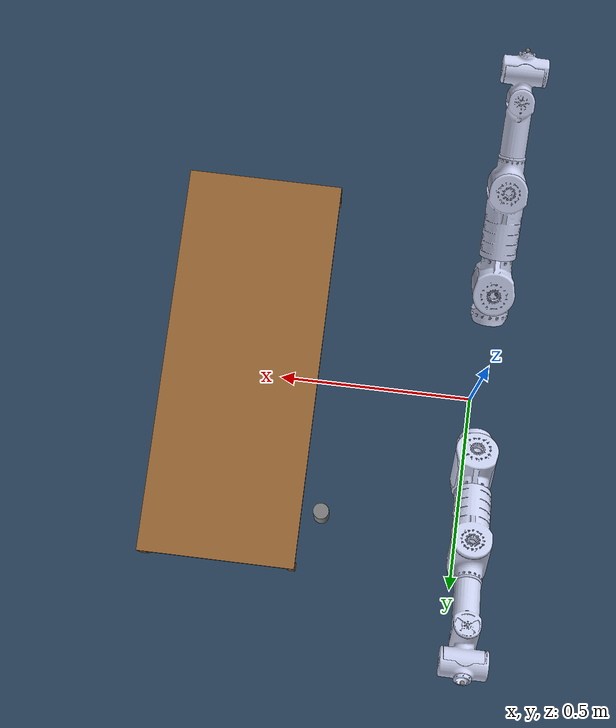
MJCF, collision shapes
<mujoco model="dual arm scene">

  <option timestep="0.001"/>
  <include file="dual_arm.xml"/>

  <statistic center="0.2 0 0.2" extent="1.0"/>

  <visual>
    <headlight diffuse="0.6 0.6 0.6" ambient="0.3 0.3 0.3" specular="0 0 0"/>
    <rgba haze="0.15 0.25 0.35 1"/>
    <global azimuth="-120" elevation="-20"/>
  </visual>

  <asset>
    <texture type="skybox" builtin="gradient" rgb1="0.3 0.5 0.7" rgb2="0 0 0" width="512" height="3072"/>
    <texture type="2d" name="groundplane" builtin="checker" mark="edge" rgb1="0.2 0.3 0.4" rgb2="0.1 0.2 0.3"
      markrgb="0.8 0.8 0.8" width="300" height="300"/>
    <material name="groundplane" texture="groundplane" texuniform="true" texrepeat="5 5" reflectance="0.2"/>
  </asset>

  <worldbody>
    <light pos="0 0 1.5" dir="0 0 -1" directional="true"/>
    <geom name="floor" size="0 0 0.05" type="plane" material="groundplane"/>
    <geom name="cylinder" type="cylinder" size="0.02 0.08" pos="0.35 0.35 0.08" contype="0" conaffinity="0"/>
    <body name="table" pos="0.6 0 0.1">
      <geom name="table_top" type="box" size="0.2 0.5 0.01" pos="0 0 0.01" rgba="0.6 0.4 0.2 1"/>
      <geom name="table_leg1" type="box" size="0.01 0.01 0.05" pos="-0.19 -0.49 -0.05" rgba="0.6 0.4 0.2 1"/>
      <geom name="table_leg2" type="box" size="0.01 0.01 0.05" pos="0.19 -0.49 -0.05" rgba="0.6 0.4 0.2 1"/>
      <geom name="table_leg3" type="box" size="0.01 0.01 0.05" pos="-0.19 0.49 -0.05" rgba="0.6 0.4 0.2 1"/>
      <geom name="table_leg4" type="box" size="0.01 0.01 0.05" pos="0.19 0.49 -0.05" rgba="0.6 0.4 0.2 1"/>
    </body>
  </worldbody>
</mujoco>

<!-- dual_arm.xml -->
<mujoco model="DUALARM.SLDASM">
  <compiler angle="radian" meshdir="meshes/"/>
  <option integrator="implicitfast"/>
  <asset>
    <mesh name="base_link" file="base_link.STL"/>
    <mesh name="L1" file="L1.STL"/>
    <mesh name="L2" file="L2.STL"/>
    <mesh name="L3" file="L3.STL"/>
    <mesh name="L4" file="L4.STL"/>
    <mesh name="L5" file="L5.STL"/>
    <mesh name="L6" file="L6.STL"/>
    <mesh name="L7" file="L7.STL"/>
    <mesh name="L8" file="L8.STL"/>
    <mesh name="L9" file="L9.STL"/>
    <mesh name="L10" file="L10.STL"/>
    <mesh name="L11" file="L11.STL"/>
    <mesh name="L12" file="L12.STL"/>
    <mesh name="L13" file="L13.STL"/>
    <mesh name="L14" file="L14.STL"/>
  </asset>

  <default>
    <default class="RAW">
      <joint range="-3.14 3.14"/>
      <general ctrlrange="-3.14 3.14" gaintype="fixed" biastype="affine" gainprm="2000" biasprm="0 -2000 -200"/>
    </default>
    <default class="PITCH_big">
      <joint range="-1.4835299 1.4835299"/>
      <general ctrlrange="-1.4835299 1.4835299" gaintype="fixed" biastype="affine" gainprm="2000" biasprm="0 -2000 -200"/>
    </default>
    <default class="PITCH">
      <joint range="-1.3089969 1.3089969"/>
      <general ctrlrange="-1.3089969 1.3089969" gaintype="fixed" biastype="affine" gainprm="2000" biasprm="0 -2000 -200"/>
    </default>
  </default>

  <worldbody>
    <geom type="mesh" contype="0" conaffinity="0" group="1" density="0" rgba="0.792157 0.819608 0.933333 1" mesh="base_link"/>
    <body name="L1" pos="0 0.14331 0.33244" quat="0.8660254 -0.50000 0 0">
      <inertial pos="-2.54816e-07 0.000220683 0.0591882" quat="0.704538 0.0600183 -0.0598814 0.704584" mass="0.256101" diaginertia="0.000520388 0.000503496 0.000461003"/>
      <joint name="J1" pos="0 0 0" axis="0 0 1" class="RAW"/>
      <geom type="mesh" contype="0" conaffinity="0" group="1" density="0" rgba="0.792157 0.819608 0.933333 1" mesh="L1"/>
      <geom type="mesh" rgba="0.792157 0.819608 0.933333 1" mesh="L1"/>
      <body name="L2" pos="0 0 0.085" quat="0.707105 -0.707108 0 0">
        <inertial pos="-6.15475e-05 -0.0254038 -0.00770433" quat="0.998651 0.0518821 -0.00028413 -0.00212822" mass="0.203365" diaginertia="0.000711807 0.000636282 0.000347615"/>
        <joint name="J2" pos="0 0 0" axis="0 0 1" class="PITCH_big"/>
        <geom type="mesh" contype="0" conaffinity="0" group="1" density="0" rgba="0.792157 0.819608 0.933333 1" mesh="L2"/>
        <geom type="mesh" rgba="0.792157 0.819608 0.933333 1" mesh="L2"/>
        <body name="L3" pos="0 -0.0665 0" quat="0.707105 0.707108 0 0">
          <inertial pos="3.43687e-05 -0.00171785 0.090774" quat="0.998451 0.0556063 0.000275665 -0.00163807" mass="0.594887" diaginertia="0.00136272 0.00116006 0.000824936"/>
          <joint name="J3" pos="0 0 0" axis="0 0 1" class="RAW"/>
          <geom type="mesh" contype="0" conaffinity="0" group="1" density="0" rgba="0.792157 0.819608 0.933333 1" mesh="L3"/>
          <geom type="mesh" rgba="0.792157 0.819608 0.933333 1" mesh="L3"/>
          <body name="L4" pos="0 0 0.1835" quat="0.499998 0.5 -0.5 0.500002">
            <inertial pos="0.012252 5.60753e-06 0.00299782" quat="-0.000191729 0.686583 -9.14932e-05 0.727051" mass="0.162422" diaginertia="0.000322962 0.000311279 0.000245846"/>
            <joint name="J4" pos="0 0 0" axis="0 0 -1" class="PITCH"/>
            <geom type="mesh" contype="0" conaffinity="0" group="1" density="0" rgba="0.792157 0.819608 0.933333 1" mesh="L4"/>
            <geom type="mesh" rgba="0.792157 0.819608 0.933333 1" mesh="L4"/>
            <body name="L5" pos="0.0605 0 0" quat="0.499998 0.5 0.500002 0.5">
              <inertial pos="1.81608e-06 -0.00153728 0.0816001" quat="0.997061 0.0766126 -6.46332e-05 3.30323e-05" mass="0.144842" diaginertia="0.000301099 0.000237452 0.000161152"/>
              <joint name="J5" pos="0 0 0" axis="0 0 1" class="RAW"/>
              <geom type="mesh" contype="0" conaffinity="0" group="1" density="0" rgba="0.792157 0.819608 0.933333 1" mesh="L5"/>
              <geom type="mesh" rgba="0.792157 0.819608 0.933333 1" mesh="L5"/>
              <body name="L6" pos="0 0 0.1495" quat="0.707105 -0.707108 0 0">
                <inertial pos="-0.00340681 -0.030349 -0.00101337" quat="0.520426 0.367659 -0.533336 0.55636" mass="0.0922109" diaginertia="0.000167493 0.000165763 0.000100994"/>
                <joint name="J6" pos="0 0 0" axis="0 0 -1" class="PITCH"/>
                <geom type="mesh" contype="0" conaffinity="0" group="1" density="0" rgba="0.792157 0.819608 0.933333 1" mesh="L6"/>
                <geom type="mesh" rgba="0.792157 0.819608 0.933333 1" mesh="L6"/>
                <body name="L7" pos="0 -0.062 0" quat="0.499998 -0.5 0.500002 -0.5">
                  <inertial pos="0.0153453 9.27391e-06 1.34171e-05" quat="0.71 0.013705 0.0138066 0.703933" mass="0.059033" diaginertia="9.54069e-05 9.25805e-05 3.54181e-05"/>
                  <joint name="J7" pos="0 0 0" axis="0 0 1" class="RAW"/>
                  <geom type="mesh" contype="0" conaffinity="0" group="1" density="0" rgba="0.792157 0.819608 0.933333 1" mesh="L7"/>
                  <geom type="mesh" rgba="0.792157 0.819608 0.933333 1" mesh="L7"/>
                  <site name="end_effector_right" pos="0.05 0.0 0" quat="0.7071068 0 0.7071068 0"/>
                </body>
              </body>
            </body>
          </body>
        </body>
      </body>
    </body>
    <body name="L8" pos="0 -0.14331 0.33244" quat="0.866025 0.500001 0 0">
      <inertial pos="2.55277e-07 -0.000220685 0.0581882" quat="0.704537 -0.0600183 0.0598815 0.704585" mass="0.256101" diaginertia="0.000520388 0.000503496 0.000461003"/>
      <joint name="J8" pos="0 0 0" axis="0 0 -1" class="RAW"/>
      <geom type="mesh" contype="0" conaffinity="0" group="1" density="0" rgba="0.792157 0.819608 0.933333 1" mesh="L8"/>
      <geom type="mesh" rgba="0.792157 0.819608 0.933333 1" mesh="L8"/>
      <body name="L9" pos="0 0 0.085" quat="0.707105 0.707108 0 0">
        <inertial pos="6.15475e-05 0.0244038 -0.00770433" quat="0.998651 -0.0518821 0.00028413 -0.00212822" mass="0.203365" diaginertia="0.000711807 0.000636282 0.000347615"/>
        <joint name="J9" pos="0 0 0" axis="0 0 -1" class="PITCH_big"/>
        <geom type="mesh" contype="0" conaffinity="0" group="1" density="0" rgba="0.792157 0.819608 0.933333 1" mesh="L9"/>
        <geom type="mesh" rgba="0.792157 0.819608 0.933333 1" mesh="L9"/>
        <body name="L10" pos="0 0.0665 0" quat="0.707105 -0.707108 0 0">
          <inertial pos="-3.43687e-05 0.00171785 0.089774" quat="0.998451 -0.0556063 -0.000275665 -0.00163807" mass="0.594887" diaginertia="0.00136272 0.00116006 0.000824936"/>
          <joint name="J10" pos="0 0 0" axis="0 0 -1" class="RAW"/>
          <geom type="mesh" contype="0" conaffinity="0" group="1" density="0" rgba="0.792157 0.819608 0.933333 1" mesh="L10"/>
          <geom type="mesh" rgba="0.792157 0.819608 0.933333 1" mesh="L10"/>
          <body name="L11" pos="0 0 0.1835" quat="0.707105 0.707108 0 0">
            <inertial pos="-5.60753e-06 0.011252 0.00299782" quat="0.485553 0.514238 -0.513967 0.485423" mass="0.162422" diaginertia="0.000322962 0.000311279 0.000245846"/>
            <joint name="J11" pos="0 0 0" axis="0 0 -1" class="PITCH"/>
            <geom type="mesh" contype="0" conaffinity="0" group="1" density="0" rgba="0.792157 0.819608 0.933333 1" mesh="L11"/>
            <geom type="mesh" rgba="0.792157 0.819608 0.933333 1" mesh="L11"/>
            <body name="L12" pos="0 0.0605 0" quat="0.707105 -0.707108 0 0">
              <inertial pos="-1.81608e-06 0.00153728 0.0806001" quat="0.997061 -0.0766126 6.46332e-05 3.30323e-05" mass="0.144842" diaginertia="0.000301099 0.000237452 0.000161152"/>
              <joint name="J12" pos="0 0 0" axis="0 0 -1" class="RAW"/>
              <geom type="mesh" contype="0" conaffinity="0" group="1" density="0" rgba="0.792157 0.819608 0.933333 1" mesh="L12"/>
              <geom type="mesh" rgba="0.792157 0.819608 0.933333 1" mesh="L12"/>
              <body name="L13" pos="0 0 0.1495" quat="0.707105 0.707108 0 0">
                <inertial pos="0.00340681 0.029349 -0.00101337" quat="0.533336 0.556361 -0.520426 0.367657" mass="0.0922109" diaginertia="0.000167492 0.000165763 0.000100994"/>
                <joint name="J13" pos="0 0 0" axis="0 0 -1" class="PITCH"/>
                <geom type="mesh" contype="0" conaffinity="0" group="1" density="0" rgba="0.792157 0.819608 0.933333 1" mesh="L13"/>
                <geom type="mesh" rgba="0.792157 0.819608 0.933333 1" mesh="L13"/>
                <body name="L14" pos="0 0.062 0" quat="0.499998 0.5 0.500002 0.5">
                  <inertial pos="0.0143453 -9.27391e-06 -1.34171e-05" quat="0.703933 -0.0138066 -0.013705 0.71" mass="0.059033" diaginertia="9.54069e-05 9.25805e-05 3.54181e-05"/>
                  <joint name="J14" pos="0 0 0" axis="0 0 1" class="RAW"/>
                  <geom type="mesh" contype="0" conaffinity="0" group="1" density="0" rgba="0.792157 0.819608 0.933333 1" mesh="L14"/>
                  <geom type="mesh" rgba="0.792157 0.819608 0.933333 1" mesh="L14"/>
                  <site name="end_effector_left" pos="0.05 0.0 0" quat="0.7071068 0 0.7071068 0"/>
                </body>
              </body>
            </body>
          </body>
        </body>
      </body>
    </body>
  </worldbody>

  <actuator>
    <general name="actuator1" joint="J1" class = "RAW"/>
    <general name="actuator2" joint="J2" class = "PITCH_big"/>
    <general name="actuator3" joint="J3" class = "RAW"/>
    <general name="actuator4" joint="J4" class = "PITCH"/>
    <general name="actuator5" joint="J5" class = "RAW"/>
    <general name="actuator6" joint="J6" class = "PITCH"/>
    <general name="actuator7" joint="J7" class = "RAW"/>
    <general name="actuator8" joint="J8" class = "RAW"/>
    <general name="actuator9" joint="J9" class = "PITCH_big"/>
    <general name="actuator10" joint="J10" class = "RAW"/>
    <general name="actuator11" joint="J11" class = "PITCH"/>
    <general name="actuator12" joint="J12" class = "RAW"/>
    <general name="actuator13" joint="J13" class = "PITCH"/>
    <general name="actuator14" joint="J14" class = "RAW"/>
  </actuator>

  <keyframe>
    <key name="home" qpos="0 0 0 0 0 0 0 0 0 0 0 0 0 0" ctrl = "0 0 0 0 0 0 0 0 0 0 0 0 0 0"/>
    <key name="pos1" qpos="0.69 1.05 0.0786 1.05 0 0 0 0.69 1.05 0.0786 1.05 0 0 0 " ctrl = "0.69 1.05 0.0786 1.25 0 0 0 0.69 1.05 0.0786 1.05 0 0 0 "/>
    <key name="pos2" qpos="0.0943 0.742 0.581 1.05 0.581 0.654 0.0 0.345 0.525 0.0393 0.525 0.581 0.654 0.0" ctrl = "0.0943 0.742 0.581 1.05 0.581 0.654 0.0 0.345 0.525 0.0393 0.525 0.581 0.654 0.0"/>
    <key name="pos3" qpos="0.1725 0.2625 0.01965 0.2625 0 0 0 0.1725 0.2625 0.01965 0.2625 0 0 0" ctrl = "0.1725 0.2625 0.01965 0.2625 0 0 0 0.1725 0.2625 0.01965 0.2625 0 0 0"/>
    <key name="pos4" qpos="0.0 0.3 0 0.3 0 0 0 0.0 0.3 0 0.3 0 0 0" ctrl = "0.0 0.3 0 0.3 0 0 0 0.0 0.3 0 0.3 0 0 0"/>
  </keyframe>
</mujoco>
